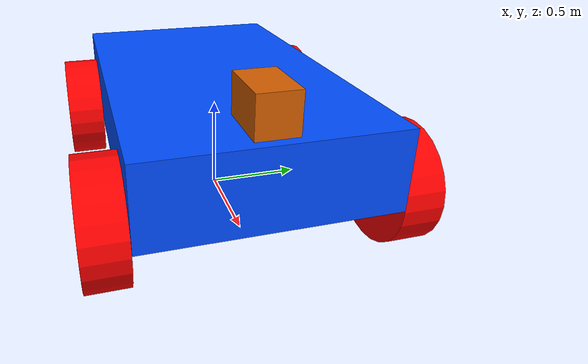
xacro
<?xml version="1.0"?>

<robot xmlns:xacro="http://www.ros.org/wiki/xacro"
       name="task11_car">

<material name="blue">
    <color rgba="0.0 0.3 1.0 1.0"/>
</material>

<material name="red">
    <color rgba="1.0 0.0 0.0 1.0"/>
</material>

<link name = "base_link">
   <visual>
       <origin xyz="0 0 0.5" rpy="0 0 0"/>
       <geometry>
           <box size = "2.0 1.2 0.4"/>
       </geometry>
       <material name="blue"/>

   </visual>

   <collision>
       <geometry>
           <box size = "2.0 1.2 0.4"/>
       </geometry>
   </collision>

   <inertial>
      <mass value = "10.0"/>

      <inertia
          ixx="1.267"
          ixy="0"
          ixz="0"
          iyy="3.467"
          iyz="0"
          izz="4.267"/>
      </inertial>

</link>

<xacro:macro name="wheel" params="wheel_name joint_name x y ">
   <link name = "${wheel_name}">
       <visual>
           <origin xyz="0 0 0" rpy="1.5708 0 0"/>

           <geometry>
              <cylinder radius="0.3" length="0.2"/>
           </geometry>
           <material name="red"/>
       </visual>

       <collision>
           <origin xyz="0 0 0" rpy="1.5708 0 0"/>
           <geometry>
              <cylinder radius="0.3" length="0.2"/>
           </geometry>
       </collision>

       <inertial>
           <mass value = "2.0"/>

           <inertia
              ixx="0.0567"
              ixy="0"
              ixz="0"
              iyy="0.0900"
              iyz="0"
              izz="0.0567"/>
      </inertial>

   </link>

   <joint name = "${joint_name}" type = "continuous" >
       <parent link = "base_link"/>
       <child link = "${wheel_name}"/>

       <axis xyz  = "0 1 0"/>
       <origin xyz="${x} ${y} 0.289" rpy="0 0 0"/>

   </joint>

</xacro:macro>
<xacro:wheel
    wheel_name="front_left_wheel"
    joint_name="front_left_joint"
    x="0.7"
    y="0.7"
/>

<xacro:wheel
    wheel_name="front_right_wheel"
    joint_name="front_right_joint"
    x="0.7"
    y="-0.7"
/>

<xacro:wheel
    wheel_name="rear_left_wheel"
    joint_name="rear_left_joint"
    x="-0.7"
    y="0.7"
/>

<xacro:wheel
    wheel_name="rear_right_wheel"
    joint_name="rear_right_joint"
    x="-0.7"
    y="-0.7"
/>

<link name = "camera_link">
   <visual>
       <origin xyz="0 0 0.5" rpy="0 0 0"/>
       <geometry>
           <box size="0.3 0.2 0.2"/>
       </geometry>
   </visual>

   <collision>
       <geometry>
           <box size="0.3 0.2 0.2"/>
       </geometry>
   </collision>

   <inertial>
      <mass value = "0.5"/>

      <inertia
          ixx="0.00333"
          ixy="0"
          ixz="0"
          iyy="0.00541"
          iyz="0"
          izz="0.00541"/>
      </inertial>

</link>

   <joint name = "camera_joint" type = "fixed" >
       <parent link = "base_link"/>
       <child link = "camera_link"/>

       <origin xyz="0.8 0  0.3" rpy="0 0 0"/>

   </joint>

  <gazebo>

    <plugin
      filename="gz-sim-diff-drive-system"
      name="gz::sim::systems::DiffDrive">

      <left_joint>front_left_joint</left_joint>
      <left_joint>rear_left_joint</left_joint>
      <right_joint>front_right_joint</right_joint>
      <right_joint>rear_right_joint</right_joint>

      <wheel_separation>1.4</wheel_separation>
      <wheel_radius>0.3</wheel_radius>

      <topic>/cmd_vel</topic>
      <odom_topic>/odom</odom_topic>
      <tf_topic>/tf</tf_topic>
      <frame_id>odom</frame_id>
      <child_frame_id>base_link</child_frame_id>

    </plugin>

  </gazebo>

</robot>
